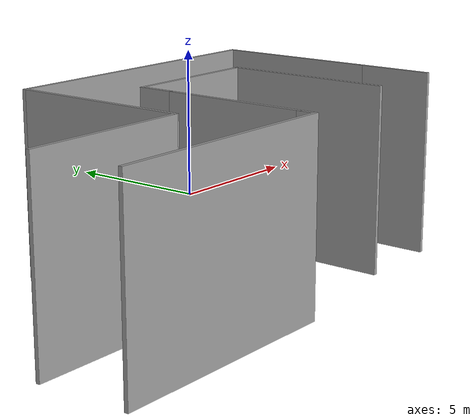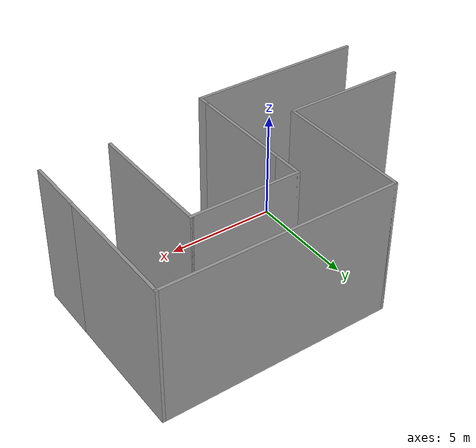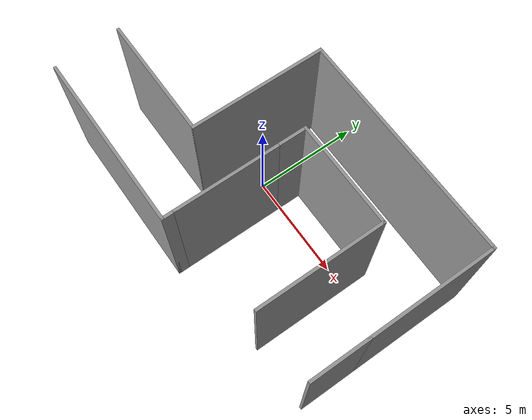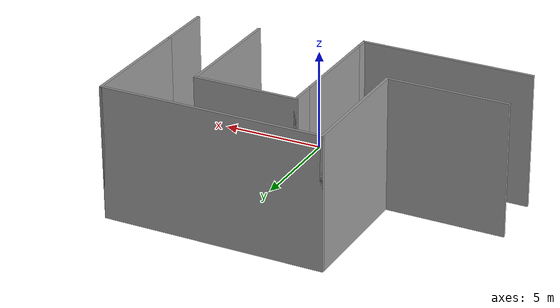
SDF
<?xml version='1.0'?>
<sdf version='1.6'>
  <model name='laser_wall_two_meters_tall'>
    <link name='Wall_32'>
      <pose frame=''>0.110082 -1.83251 0 0 -0 1.5708</pose>
      <self_collide>0</self_collide>
      <enable_wind>0</enable_wind>
      <kinematic>0</kinematic>
      <gravity>1</gravity>
      <inertial>
        <mass>1</mass>
        <pose frame=''>0 0 0 0 -0 0</pose>
        <inertia>
          <ixx>1</ixx>
          <ixy>0</ixy>
          <ixz>0</ixz>
          <iyy>1</iyy>
          <iyz>0</iyz>
          <izz>1</izz>
        </inertia>
      </inertial>
      <visual name='Wall_32_Visual'>
        <pose frame=''>0 0 0 0 -0 0</pose>
        <geometry>
          <box>
            <size>5.5 0.15 7</size>
          </box>
        </geometry>
        <material>
          <script>
            <uri>file://media/materials/scripts/gazebo.material</uri>
            <name>Gazebo/Grey</name>
          </script>
          <ambient>1 1 1 1</ambient>
          <shader type='pixel'>
            <normal_map>__default__</normal_map>
          </shader>
          <diffuse>0.7 0.7 0.7 1</diffuse>
          <specular>0.01 0.01 0.01 1</specular>
          <emissive>0 0 0 1</emissive>
        </material>
        <meta>
          <layer>0</layer>
        </meta>
        <transparency>0</transparency>
        <cast_shadows>1</cast_shadows>
      </visual>
      <collision name='Wall_32_Collision'>
        <laser_retro>0</laser_retro>
        <max_contacts>10</max_contacts>
        <pose frame=''>0 0 0 0 -0 0</pose>
        <geometry>
          <box>
            <size>5.5 0.15 7</size>
          </box>
        </geometry>
        <surface>
          <friction>
            <ode>
              <mu>1</mu>
              <mu2>1</mu2>
              <fdir1>0 0 0</fdir1>
              <slip1>0</slip1>
              <slip2>0</slip2>
            </ode>
            <torsional>
              <coefficient>1</coefficient>
              <patch_radius>0</patch_radius>
              <surface_radius>0</surface_radius>
              <use_patch_radius>1</use_patch_radius>
              <ode>
                <slip>0</slip>
              </ode>
            </torsional>
          </friction>
          <bounce>
            <restitution_coefficient>0</restitution_coefficient>
            <threshold>1e+06</threshold>
          </bounce>
          <contact>
            <collide_without_contact>0</collide_without_contact>
            <collide_without_contact_bitmask>1</collide_without_contact_bitmask>
            <collide_bitmask>1</collide_bitmask>
            <ode>
              <soft_cfm>0</soft_cfm>
              <soft_erp>0.2</soft_erp>
              <kp>1e+13</kp>
              <kd>1</kd>
              <max_vel>0.01</max_vel>
              <min_depth>0</min_depth>
            </ode>
            <bullet>
              <split_impulse>1</split_impulse>
              <split_impulse_penetration_threshold>-0.01</split_impulse_penetration_threshold>
              <soft_cfm>0</soft_cfm>
              <soft_erp>0.2</soft_erp>
              <kp>1e+13</kp>
              <kd>1</kd>
            </bullet>
          </contact>
        </surface>
      </collision>
    </link>
    <link name='Wall_38'>
      <pose frame=''>3.08645 5.10751 0 0 -0 0</pose>
      <self_collide>0</self_collide>
      <enable_wind>0</enable_wind>
      <kinematic>0</kinematic>
      <gravity>1</gravity>
      <inertial>
        <mass>1</mass>
        <pose frame=''>0 0 0 0 -0 0</pose>
        <inertia>
          <ixx>1</ixx>
          <ixy>0</ixy>
          <ixz>0</ixz>
          <iyy>1</iyy>
          <iyz>0</iyz>
          <izz>1</izz>
        </inertia>
      </inertial>
      <visual name='Wall_38_Visual'>
        <pose frame=''>0 0 0 0 -0 0</pose>
        <geometry>
          <box>
            <size>11.75 0.15 7</size>
          </box>
        </geometry>
        <material>
          <script>
            <uri>file://media/materials/scripts/gazebo.material</uri>
            <name>Gazebo/Grey</name>
          </script>
          <ambient>1 1 1 1</ambient>
          <shader type='pixel'>
            <normal_map>__default__</normal_map>
          </shader>
          <diffuse>0.7 0.7 0.7 1</diffuse>
          <specular>0.01 0.01 0.01 1</specular>
          <emissive>0 0 0 1</emissive>
        </material>
        <meta>
          <layer>0</layer>
        </meta>
        <transparency>0</transparency>
        <cast_shadows>1</cast_shadows>
      </visual>
      <collision name='Wall_38_Collision'>
        <laser_retro>0</laser_retro>
        <max_contacts>10</max_contacts>
        <pose frame=''>0 0 0 0 -0 0</pose>
        <geometry>
          <box>
            <size>11.75 0.15 7</size>
          </box>
        </geometry>
        <surface>
          <friction>
            <ode>
              <mu>1</mu>
              <mu2>1</mu2>
              <fdir1>0 0 0</fdir1>
              <slip1>0</slip1>
              <slip2>0</slip2>
            </ode>
            <torsional>
              <coefficient>1</coefficient>
              <patch_radius>0</patch_radius>
              <surface_radius>0</surface_radius>
              <use_patch_radius>1</use_patch_radius>
              <ode>
                <slip>0</slip>
              </ode>
            </torsional>
          </friction>
          <bounce>
            <restitution_coefficient>0</restitution_coefficient>
            <threshold>1e+06</threshold>
          </bounce>
          <contact>
            <collide_without_contact>0</collide_without_contact>
            <collide_without_contact_bitmask>1</collide_without_contact_bitmask>
            <collide_bitmask>1</collide_bitmask>
            <ode>
              <soft_cfm>0</soft_cfm>
              <soft_erp>0.2</soft_erp>
              <kp>1e+13</kp>
              <kd>1</kd>
              <max_vel>0.01</max_vel>
              <min_depth>0</min_depth>
            </ode>
            <bullet>
              <split_impulse>1</split_impulse>
              <split_impulse_penetration_threshold>-0.01</split_impulse_penetration_threshold>
              <soft_cfm>0</soft_cfm>
              <soft_erp>0.2</soft_erp>
              <kp>1e+13</kp>
              <kd>1</kd>
            </bullet>
          </contact>
        </surface>
      </collision>
    </link>
    <link name='Wall_39'>
      <pose frame=''>8.88645 1.93251 0 0 0 -1.5708</pose>
      <self_collide>0</self_collide>
      <enable_wind>0</enable_wind>
      <kinematic>0</kinematic>
      <gravity>1</gravity>
      <inertial>
        <mass>1</mass>
        <pose frame=''>0 0 0 0 -0 0</pose>
        <inertia>
          <ixx>1</ixx>
          <ixy>0</ixy>
          <ixz>0</ixz>
          <iyy>1</iyy>
          <iyz>0</iyz>
          <izz>1</izz>
        </inertia>
      </inertial>
      <visual name='Wall_39_Visual'>
        <pose frame=''>0 0 0 0 -0 0</pose>
        <geometry>
          <box>
            <size>6.5 0.15 7</size>
          </box>
        </geometry>
        <material>
          <script>
            <uri>file://media/materials/scripts/gazebo.material</uri>
            <name>Gazebo/Grey</name>
          </script>
          <ambient>1 1 1 1</ambient>
          <shader type='pixel'>
            <normal_map>__default__</normal_map>
          </shader>
          <diffuse>0.7 0.7 0.7 1</diffuse>
          <specular>0.01 0.01 0.01 1</specular>
          <emissive>0 0 0 1</emissive>
        </material>
        <meta>
          <layer>0</layer>
        </meta>
        <transparency>0</transparency>
        <cast_shadows>1</cast_shadows>
      </visual>
      <collision name='Wall_39_Collision'>
        <laser_retro>0</laser_retro>
        <max_contacts>10</max_contacts>
        <pose frame=''>0 0 0 0 -0 0</pose>
        <geometry>
          <box>
            <size>6.5 0.15 7</size>
          </box>
        </geometry>
        <surface>
          <friction>
            <ode>
              <mu>1</mu>
              <mu2>1</mu2>
              <fdir1>0 0 0</fdir1>
              <slip1>0</slip1>
              <slip2>0</slip2>
            </ode>
            <torsional>
              <coefficient>1</coefficient>
              <patch_radius>0</patch_radius>
              <surface_radius>0</surface_radius>
              <use_patch_radius>1</use_patch_radius>
              <ode>
                <slip>0</slip>
              </ode>
            </torsional>
          </friction>
          <bounce>
            <restitution_coefficient>0</restitution_coefficient>
            <threshold>1e+06</threshold>
          </bounce>
          <contact>
            <collide_without_contact>0</collide_without_contact>
            <collide_without_contact_bitmask>1</collide_without_contact_bitmask>
            <collide_bitmask>1</collide_bitmask>
            <ode>
              <soft_cfm>0</soft_cfm>
              <soft_erp>0.2</soft_erp>
              <kp>1e+13</kp>
              <kd>1</kd>
              <max_vel>0.01</max_vel>
              <min_depth>0</min_depth>
            </ode>
            <bullet>
              <split_impulse>1</split_impulse>
              <split_impulse_penetration_threshold>-0.01</split_impulse_penetration_threshold>
              <soft_cfm>0</soft_cfm>
              <soft_erp>0.2</soft_erp>
              <kp>1e+13</kp>
              <kd>1</kd>
            </bullet>
          </contact>
        </surface>
      </collision>
    </link>
    <link name='Wall_42'>
      <pose frame=''>0.110082 1.51749 0 0 -0 1.5708</pose>
      <self_collide>0</self_collide>
      <enable_wind>0</enable_wind>
      <kinematic>0</kinematic>
      <gravity>1</gravity>
      <inertial>
        <mass>1</mass>
        <pose frame=''>0 0 0 0 -0 0</pose>
        <inertia>
          <ixx>1</ixx>
          <ixy>0</ixy>
          <ixz>0</ixz>
          <iyy>1</iyy>
          <iyz>0</iyz>
          <izz>1</izz>
        </inertia>
      </inertial>
      <visual name='Wall_42_Visual'>
        <pose frame=''>0 0 0 0 -0 0</pose>
        <geometry>
          <box>
            <size>1.5 0.15 7</size>
          </box>
        </geometry>
        <material>
          <script>
            <uri>file://media/materials/scripts/gazebo.material</uri>
            <name>Gazebo/Grey</name>
          </script>
          <ambient>1 1 1 1</ambient>
          <shader type='pixel'>
            <normal_map>__default__</normal_map>
          </shader>
          <diffuse>0.7 0.7 0.7 1</diffuse>
          <specular>0.01 0.01 0.01 1</specular>
          <emissive>0 0 0 1</emissive>
        </material>
        <meta>
          <layer>0</layer>
        </meta>
        <transparency>0</transparency>
        <cast_shadows>1</cast_shadows>
      </visual>
      <collision name='Wall_42_Collision'>
        <laser_retro>0</laser_retro>
        <max_contacts>10</max_contacts>
        <pose frame=''>0 0 0 0 -0 0</pose>
        <geometry>
          <box>
            <size>1.5 0.15 7</size>
          </box>
        </geometry>
        <surface>
          <friction>
            <ode>
              <mu>1</mu>
              <mu2>1</mu2>
              <fdir1>0 0 0</fdir1>
              <slip1>0</slip1>
              <slip2>0</slip2>
            </ode>
            <torsional>
              <coefficient>1</coefficient>
              <patch_radius>0</patch_radius>
              <surface_radius>0</surface_radius>
              <use_patch_radius>1</use_patch_radius>
              <ode>
                <slip>0</slip>
              </ode>
            </torsional>
          </friction>
          <bounce>
            <restitution_coefficient>0</restitution_coefficient>
            <threshold>1e+06</threshold>
          </bounce>
          <contact>
            <collide_without_contact>0</collide_without_contact>
            <collide_without_contact_bitmask>1</collide_without_contact_bitmask>
            <collide_bitmask>1</collide_bitmask>
            <ode>
              <soft_cfm>0</soft_cfm>
              <soft_erp>0.2</soft_erp>
              <kp>1e+13</kp>
              <kd>1</kd>
              <max_vel>0.01</max_vel>
              <min_depth>0</min_depth>
            </ode>
            <bullet>
              <split_impulse>1</split_impulse>
              <split_impulse_penetration_threshold>-0.01</split_impulse_penetration_threshold>
              <soft_cfm>0</soft_cfm>
              <soft_erp>0.2</soft_erp>
              <kp>1e+13</kp>
              <kd>1</kd>
            </bullet>
          </contact>
        </surface>
      </collision>
    </link>
    <link name='Wall_43'>
      <pose frame=''>2.78508 2.19249 0 0 -0 0</pose>
      <self_collide>0</self_collide>
      <enable_wind>0</enable_wind>
      <kinematic>0</kinematic>
      <gravity>1</gravity>
      <inertial>
        <mass>1</mass>
        <pose frame=''>0 0 0 0 -0 0</pose>
        <inertia>
          <ixx>1</ixx>
          <ixy>0</ixy>
          <ixz>0</ixz>
          <iyy>1</iyy>
          <iyz>0</iyz>
          <izz>1</izz>
        </inertia>
      </inertial>
      <visual name='Wall_43_Visual'>
        <pose frame=''>0 0 0 0 -0 0</pose>
        <geometry>
          <box>
            <size>5.5 0.15 7</size>
          </box>
        </geometry>
        <material>
          <script>
            <uri>file://media/materials/scripts/gazebo.material</uri>
            <name>Gazebo/Grey</name>
          </script>
          <ambient>1 1 1 1</ambient>
          <shader type='pixel'>
            <normal_map>__default__</normal_map>
          </shader>
          <diffuse>0.7 0.7 0.7 1</diffuse>
          <specular>0.01 0.01 0.01 1</specular>
          <emissive>0 0 0 1</emissive>
        </material>
        <meta>
          <layer>0</layer>
        </meta>
        <transparency>0</transparency>
        <cast_shadows>1</cast_shadows>
      </visual>
      <collision name='Wall_43_Collision'>
        <laser_retro>0</laser_retro>
        <max_contacts>10</max_contacts>
        <pose frame=''>0 0 0 0 -0 0</pose>
        <geometry>
          <box>
            <size>5.5 0.15 7</size>
          </box>
        </geometry>
        <surface>
          <friction>
            <ode>
              <mu>1</mu>
              <mu2>1</mu2>
              <fdir1>0 0 0</fdir1>
              <slip1>0</slip1>
              <slip2>0</slip2>
            </ode>
            <torsional>
              <coefficient>1</coefficient>
              <patch_radius>0</patch_radius>
              <surface_radius>0</surface_radius>
              <use_patch_radius>1</use_patch_radius>
              <ode>
                <slip>0</slip>
              </ode>
            </torsional>
          </friction>
          <bounce>
            <restitution_coefficient>0</restitution_coefficient>
            <threshold>1e+06</threshold>
          </bounce>
          <contact>
            <collide_without_contact>0</collide_without_contact>
            <collide_without_contact_bitmask>1</collide_without_contact_bitmask>
            <collide_bitmask>1</collide_bitmask>
            <ode>
              <soft_cfm>0</soft_cfm>
              <soft_erp>0.2</soft_erp>
              <kp>1e+13</kp>
              <kd>1</kd>
              <max_vel>0.01</max_vel>
              <min_depth>0</min_depth>
            </ode>
            <bullet>
              <split_impulse>1</split_impulse>
              <split_impulse_penetration_threshold>-0.01</split_impulse_penetration_threshold>
              <soft_cfm>0</soft_cfm>
              <soft_erp>0.2</soft_erp>
              <kp>1e+13</kp>
              <kd>1</kd>
            </bullet>
          </contact>
        </surface>
      </collision>
    </link>
    <link name='Wall_44'>
      <pose frame=''>5.46008 -0.98251 0 0 0 -1.5708</pose>
      <self_collide>0</self_collide>
      <enable_wind>0</enable_wind>
      <kinematic>0</kinematic>
      <gravity>1</gravity>
      <inertial>
        <mass>1</mass>
        <pose frame=''>0 0 0 0 -0 0</pose>
        <inertia>
          <ixx>1</ixx>
          <ixy>0</ixy>
          <ixz>0</ixz>
          <iyy>1</iyy>
          <iyz>0</iyz>
          <izz>1</izz>
        </inertia>
      </inertial>
      <visual name='Wall_44_Visual'>
        <pose frame=''>0 0 0 0 -0 0</pose>
        <geometry>
          <box>
            <size>6.5 0.15 7</size>
          </box>
        </geometry>
        <material>
          <script>
            <uri>file://media/materials/scripts/gazebo.material</uri>
            <name>Gazebo/Grey</name>
          </script>
          <ambient>1 1 1 1</ambient>
          <shader type='pixel'>
            <normal_map>__default__</normal_map>
          </shader>
          <diffuse>0.7 0.7 0.7 1</diffuse>
          <specular>0.01 0.01 0.01 1</specular>
          <emissive>0 0 0 1</emissive>
        </material>
        <meta>
          <layer>0</layer>
        </meta>
        <transparency>0</transparency>
        <cast_shadows>1</cast_shadows>
      </visual>
      <collision name='Wall_44_Collision'>
        <laser_retro>0</laser_retro>
        <max_contacts>10</max_contacts>
        <pose frame=''>0 0 0 0 -0 0</pose>
        <geometry>
          <box>
            <size>6.5 0.15 7</size>
          </box>
        </geometry>
        <surface>
          <friction>
            <ode>
              <mu>1</mu>
              <mu2>1</mu2>
              <fdir1>0 0 0</fdir1>
              <slip1>0</slip1>
              <slip2>0</slip2>
            </ode>
            <torsional>
              <coefficient>1</coefficient>
              <patch_radius>0</patch_radius>
              <surface_radius>0</surface_radius>
              <use_patch_radius>1</use_patch_radius>
              <ode>
                <slip>0</slip>
              </ode>
            </torsional>
          </friction>
          <bounce>
            <restitution_coefficient>0</restitution_coefficient>
            <threshold>1e+06</threshold>
          </bounce>
          <contact>
            <collide_without_contact>0</collide_without_contact>
            <collide_without_contact_bitmask>1</collide_without_contact_bitmask>
            <collide_bitmask>1</collide_bitmask>
            <ode>
              <soft_cfm>0</soft_cfm>
              <soft_erp>0.2</soft_erp>
              <kp>1e+13</kp>
              <kd>1</kd>
              <max_vel>0.01</max_vel>
              <min_depth>0</min_depth>
            </ode>
            <bullet>
              <split_impulse>1</split_impulse>
              <split_impulse_penetration_threshold>-0.01</split_impulse_penetration_threshold>
              <soft_cfm>0</soft_cfm>
              <soft_erp>0.2</soft_erp>
              <kp>1e+13</kp>
              <kd>1</kd>
            </bullet>
          </contact>
        </surface>
      </collision>
    </link>
    <link name='Wall_48'>
      <pose frame=''>8.88645 -2.66749 0 0 0 -1.5708</pose>
      <self_collide>0</self_collide>
      <enable_wind>0</enable_wind>
      <kinematic>0</kinematic>
      <gravity>1</gravity>
      <inertial>
        <mass>1</mass>
        <pose frame=''>0 0 0 0 -0 0</pose>
        <inertia>
          <ixx>1</ixx>
          <ixy>0</ixy>
          <ixz>0</ixz>
          <iyy>1</iyy>
          <iyz>0</iyz>
          <izz>1</izz>
        </inertia>
      </inertial>
      <visual name='Wall_48_Visual'>
        <pose frame=''>0 0 0 0 -0 0</pose>
        <geometry>
          <box>
            <size>3 0.15 7</size>
          </box>
        </geometry>
        <material>
          <script>
            <uri>file://media/materials/scripts/gazebo.material</uri>
            <name>Gazebo/Grey</name>
          </script>
          <ambient>1 1 1 1</ambient>
          <shader type='pixel'>
            <normal_map>__default__</normal_map>
          </shader>
          <diffuse>0.7 0.7 0.7 1</diffuse>
          <specular>0.01 0.01 0.01 1</specular>
          <emissive>0 0 0 1</emissive>
        </material>
        <meta>
          <layer>0</layer>
        </meta>
        <transparency>0</transparency>
        <cast_shadows>1</cast_shadows>
      </visual>
      <collision name='Wall_48_Collision'>
        <laser_retro>0</laser_retro>
        <max_contacts>10</max_contacts>
        <pose frame=''>0 0 0 0 -0 0</pose>
        <geometry>
          <box>
            <size>3 0.15 7</size>
          </box>
        </geometry>
        <surface>
          <friction>
            <ode>
              <mu>1</mu>
              <mu2>1</mu2>
              <fdir1>0 0 0</fdir1>
              <slip1>0</slip1>
              <slip2>0</slip2>
            </ode>
            <torsional>
              <coefficient>1</coefficient>
              <patch_radius>0</patch_radius>
              <surface_radius>0</surface_radius>
              <use_patch_radius>1</use_patch_radius>
              <ode>
                <slip>0</slip>
              </ode>
            </torsional>
          </friction>
          <bounce>
            <restitution_coefficient>0</restitution_coefficient>
            <threshold>1e+06</threshold>
          </bounce>
          <contact>
            <collide_without_contact>0</collide_without_contact>
            <collide_without_contact_bitmask>1</collide_without_contact_bitmask>
            <collide_bitmask>1</collide_bitmask>
            <ode>
              <soft_cfm>0</soft_cfm>
              <soft_erp>0.2</soft_erp>
              <kp>1e+13</kp>
              <kd>1</kd>
              <max_vel>0.01</max_vel>
              <min_depth>0</min_depth>
            </ode>
            <bullet>
              <split_impulse>1</split_impulse>
              <split_impulse_penetration_threshold>-0.01</split_impulse_penetration_threshold>
              <soft_cfm>0</soft_cfm>
              <soft_erp>0.2</soft_erp>
              <kp>1e+13</kp>
              <kd>1</kd>
            </bullet>
          </contact>
        </surface>
      </collision>
    </link>
    <link name='Wall_54'>
      <pose frame=''>-5.83786 -1.75254 0 0 -0 0</pose>
      <self_collide>0</self_collide>
      <enable_wind>0</enable_wind>
      <kinematic>0</kinematic>
      <gravity>1</gravity>
      <inertial>
        <mass>1</mass>
        <pose frame=''>0 0 0 0 -0 0</pose>
        <inertia>
          <ixx>1</ixx>
          <ixy>0</ixy>
          <ixz>0</ixz>
          <iyy>1</iyy>
          <iyz>0</iyz>
          <izz>1</izz>
        </inertia>
      </inertial>
      <visual name='Wall_54_Visual'>
        <pose frame=''>0 0 0 0 -0 0</pose>
        <geometry>
          <box>
            <size>6.25 0.15 7</size>
          </box>
        </geometry>
        <material>
          <script>
            <uri>file://media/materials/scripts/gazebo.material</uri>
            <name>Gazebo/Grey</name>
          </script>
          <ambient>1 1 1 1</ambient>
          <shader type='pixel'>
            <normal_map>__default__</normal_map>
          </shader>
          <diffuse>0.7 0.7 0.7 1</diffuse>
          <specular>0.01 0.01 0.01 1</specular>
          <emissive>0 0 0 1</emissive>
        </material>
        <meta>
          <layer>0</layer>
        </meta>
        <transparency>0</transparency>
        <cast_shadows>1</cast_shadows>
      </visual>
      <collision name='Wall_54_Collision'>
        <laser_retro>0</laser_retro>
        <max_contacts>10</max_contacts>
        <pose frame=''>0 0 0 0 -0 0</pose>
        <geometry>
          <box>
            <size>6.25 0.15 7</size>
          </box>
        </geometry>
        <surface>
          <friction>
            <ode>
              <mu>1</mu>
              <mu2>1</mu2>
              <fdir1>0 0 0</fdir1>
              <slip1>0</slip1>
              <slip2>0</slip2>
            </ode>
            <torsional>
              <coefficient>1</coefficient>
              <patch_radius>0</patch_radius>
              <surface_radius>0</surface_radius>
              <use_patch_radius>1</use_patch_radius>
              <ode>
                <slip>0</slip>
              </ode>
            </torsional>
          </friction>
          <bounce>
            <restitution_coefficient>0</restitution_coefficient>
            <threshold>1e+06</threshold>
          </bounce>
          <contact>
            <collide_without_contact>0</collide_without_contact>
            <collide_without_contact_bitmask>1</collide_without_contact_bitmask>
            <collide_bitmask>1</collide_bitmask>
            <ode>
              <soft_cfm>0</soft_cfm>
              <soft_erp>0.2</soft_erp>
              <kp>1e+13</kp>
              <kd>1</kd>
              <max_vel>0.01</max_vel>
              <min_depth>0</min_depth>
            </ode>
            <bullet>
              <split_impulse>1</split_impulse>
              <split_impulse_penetration_threshold>-0.01</split_impulse_penetration_threshold>
              <soft_cfm>0</soft_cfm>
              <soft_erp>0.2</soft_erp>
              <kp>1e+13</kp>
              <kd>1</kd>
            </bullet>
          </contact>
        </surface>
      </collision>
    </link>
    <link name='Wall_56'>
      <pose frame=''>-2.71355 1.68251 0 0 0 -1.5708</pose>
      <self_collide>0</self_collide>
      <enable_wind>0</enable_wind>
      <kinematic>0</kinematic>
      <gravity>1</gravity>
      <inertial>
        <mass>1</mass>
        <pose frame=''>0 0 0 0 -0 0</pose>
        <inertia>
          <ixx>1</ixx>
          <ixy>0</ixy>
          <ixz>0</ixz>
          <iyy>1</iyy>
          <iyz>0</iyz>
          <izz>1</izz>
        </inertia>
      </inertial>
      <visual name='Wall_56_Visual'>
        <pose frame=''>0 0 0 0 -0 0</pose>
        <geometry>
          <box>
            <size>7 0.15 7</size>
          </box>
        </geometry>
        <material>
          <script>
            <uri>file://media/materials/scripts/gazebo.material</uri>
            <name>Gazebo/Grey</name>
          </script>
          <ambient>1 1 1 1</ambient>
          <shader type='pixel'>
            <normal_map>__default__</normal_map>
          </shader>
          <diffuse>0.7 0.7 0.7 1</diffuse>
          <specular>0.01 0.01 0.01 1</specular>
          <emissive>0 0 0 1</emissive>
        </material>
        <meta>
          <layer>0</layer>
        </meta>
        <transparency>0</transparency>
        <cast_shadows>1</cast_shadows>
      </visual>
      <collision name='Wall_56_Collision'>
        <laser_retro>0</laser_retro>
        <max_contacts>10</max_contacts>
        <pose frame=''>0 0 0 0 -0 0</pose>
        <geometry>
          <box>
            <size>7 0.15 7</size>
          </box>
        </geometry>
        <surface>
          <friction>
            <ode>
              <mu>1</mu>
              <mu2>1</mu2>
              <fdir1>0 0 0</fdir1>
              <slip1>0</slip1>
              <slip2>0</slip2>
            </ode>
            <torsional>
              <coefficient>1</coefficient>
              <patch_radius>0</patch_radius>
              <surface_radius>0</surface_radius>
              <use_patch_radius>1</use_patch_radius>
              <ode>
                <slip>0</slip>
              </ode>
            </torsional>
          </friction>
          <bounce>
            <restitution_coefficient>0</restitution_coefficient>
            <threshold>1e+06</threshold>
          </bounce>
          <contact>
            <collide_without_contact>0</collide_without_contact>
            <collide_without_contact_bitmask>1</collide_without_contact_bitmask>
            <collide_bitmask>1</collide_bitmask>
            <ode>
              <soft_cfm>0</soft_cfm>
              <soft_erp>0.2</soft_erp>
              <kp>1e+13</kp>
              <kd>1</kd>
              <max_vel>0.01</max_vel>
              <min_depth>0</min_depth>
            </ode>
            <bullet>
              <split_impulse>1</split_impulse>
              <split_impulse_penetration_threshold>-0.01</split_impulse_penetration_threshold>
              <soft_cfm>0</soft_cfm>
              <soft_erp>0.2</soft_erp>
              <kp>1e+13</kp>
              <kd>1</kd>
            </bullet>
          </contact>
        </surface>
      </collision>
    </link>
    <link name='Wall_64'>
      <pose frame=''>0.110082 -4.80751 0 0 0 -1.5708</pose>
      <self_collide>0</self_collide>
      <enable_wind>0</enable_wind>
      <kinematic>0</kinematic>
      <gravity>1</gravity>
      <inertial>
        <mass>1</mass>
        <pose frame=''>0 0 0 0 -0 0</pose>
        <inertia>
          <ixx>1</ixx>
          <ixy>0</ixy>
          <ixz>0</ixz>
          <iyy>1</iyy>
          <iyz>0</iyz>
          <izz>1</izz>
        </inertia>
      </inertial>
      <visual name='Wall_64_Visual'>
        <pose frame=''>0 0 0 0 -0 0</pose>
        <geometry>
          <box>
            <size>0.75 0.15 7</size>
          </box>
        </geometry>
        <material>
          <script>
            <uri>file://media/materials/scripts/gazebo.material</uri>
            <name>Gazebo/Grey</name>
          </script>
          <ambient>1 1 1 1</ambient>
          <shader type='pixel'>
            <normal_map>__default__</normal_map>
          </shader>
          <diffuse>0.7 0.7 0.7 1</diffuse>
          <specular>0.01 0.01 0.01 1</specular>
          <emissive>0 0 0 1</emissive>
        </material>
        <meta>
          <layer>0</layer>
        </meta>
        <transparency>0</transparency>
        <cast_shadows>1</cast_shadows>
      </visual>
      <collision name='Wall_64_Collision'>
        <laser_retro>0</laser_retro>
        <max_contacts>10</max_contacts>
        <pose frame=''>0 0 0 0 -0 0</pose>
        <geometry>
          <box>
            <size>0.75 0.15 7</size>
          </box>
        </geometry>
        <surface>
          <friction>
            <ode>
              <mu>1</mu>
              <mu2>1</mu2>
              <fdir1>0 0 0</fdir1>
              <slip1>0</slip1>
              <slip2>0</slip2>
            </ode>
            <torsional>
              <coefficient>1</coefficient>
              <patch_radius>0</patch_radius>
              <surface_radius>0</surface_radius>
              <use_patch_radius>1</use_patch_radius>
              <ode>
                <slip>0</slip>
              </ode>
            </torsional>
          </friction>
          <bounce>
            <restitution_coefficient>0</restitution_coefficient>
            <threshold>1e+06</threshold>
          </bounce>
          <contact>
            <collide_without_contact>0</collide_without_contact>
            <collide_without_contact_bitmask>1</collide_without_contact_bitmask>
            <collide_bitmask>1</collide_bitmask>
            <ode>
              <soft_cfm>0</soft_cfm>
              <soft_erp>0.2</soft_erp>
              <kp>1e+13</kp>
              <kd>1</kd>
              <max_vel>0.01</max_vel>
              <min_depth>0</min_depth>
            </ode>
            <bullet>
              <split_impulse>1</split_impulse>
              <split_impulse_penetration_threshold>-0.01</split_impulse_penetration_threshold>
              <soft_cfm>0</soft_cfm>
              <soft_erp>0.2</soft_erp>
              <kp>1e+13</kp>
              <kd>1</kd>
            </bullet>
          </contact>
        </surface>
      </collision>
    </link>
    <link name='Wall_65'>
      <pose frame=''>-4.31492 -5.10751 0 0 -0 3.14159</pose>
      <self_collide>0</self_collide>
      <enable_wind>0</enable_wind>
      <kinematic>0</kinematic>
      <gravity>1</gravity>
      <inertial>
        <mass>1</mass>
        <pose frame=''>0 0 0 0 -0 0</pose>
        <inertia>
          <ixx>1</ixx>
          <ixy>0</ixy>
          <ixz>0</ixz>
          <iyy>1</iyy>
          <iyz>0</iyz>
          <izz>1</izz>
        </inertia>
      </inertial>
      <visual name='Wall_65_Visual'>
        <pose frame=''>0 0 0 0 -0 0</pose>
        <geometry>
          <box>
            <size>9 0.15 7</size>
          </box>
        </geometry>
        <material>
          <script>
            <uri>file://media/materials/scripts/gazebo.material</uri>
            <name>Gazebo/Grey</name>
          </script>
          <ambient>1 1 1 1</ambient>
          <shader type='pixel'>
            <normal_map>__default__</normal_map>
          </shader>
          <diffuse>0.7 0.7 0.7 1</diffuse>
          <specular>0.01 0.01 0.01 1</specular>
          <emissive>0 0 0 1</emissive>
        </material>
        <meta>
          <layer>0</layer>
        </meta>
        <transparency>0</transparency>
        <cast_shadows>1</cast_shadows>
      </visual>
      <collision name='Wall_65_Collision'>
        <laser_retro>0</laser_retro>
        <max_contacts>10</max_contacts>
        <pose frame=''>0 0 0 0 -0 0</pose>
        <geometry>
          <box>
            <size>9 0.15 7</size>
          </box>
        </geometry>
        <surface>
          <friction>
            <ode>
              <mu>1</mu>
              <mu2>1</mu2>
              <fdir1>0 0 0</fdir1>
              <slip1>0</slip1>
              <slip2>0</slip2>
            </ode>
            <torsional>
              <coefficient>1</coefficient>
              <patch_radius>0</patch_radius>
              <surface_radius>0</surface_radius>
              <use_patch_radius>1</use_patch_radius>
              <ode>
                <slip>0</slip>
              </ode>
            </torsional>
          </friction>
          <bounce>
            <restitution_coefficient>0</restitution_coefficient>
            <threshold>1e+06</threshold>
          </bounce>
          <contact>
            <collide_without_contact>0</collide_without_contact>
            <collide_without_contact_bitmask>1</collide_without_contact_bitmask>
            <collide_bitmask>1</collide_bitmask>
            <ode>
              <soft_cfm>0</soft_cfm>
              <soft_erp>0.2</soft_erp>
              <kp>1e+13</kp>
              <kd>1</kd>
              <max_vel>0.01</max_vel>
              <min_depth>0</min_depth>
            </ode>
            <bullet>
              <split_impulse>1</split_impulse>
              <split_impulse_penetration_threshold>-0.01</split_impulse_penetration_threshold>
              <soft_cfm>0</soft_cfm>
              <soft_erp>0.2</soft_erp>
              <kp>1e+13</kp>
              <kd>1</kd>
            </bullet>
          </contact>
        </surface>
      </collision>
    </link>
    <static>1</static>
    <allow_auto_disable>1</allow_auto_disable>
  </model>
</sdf>
